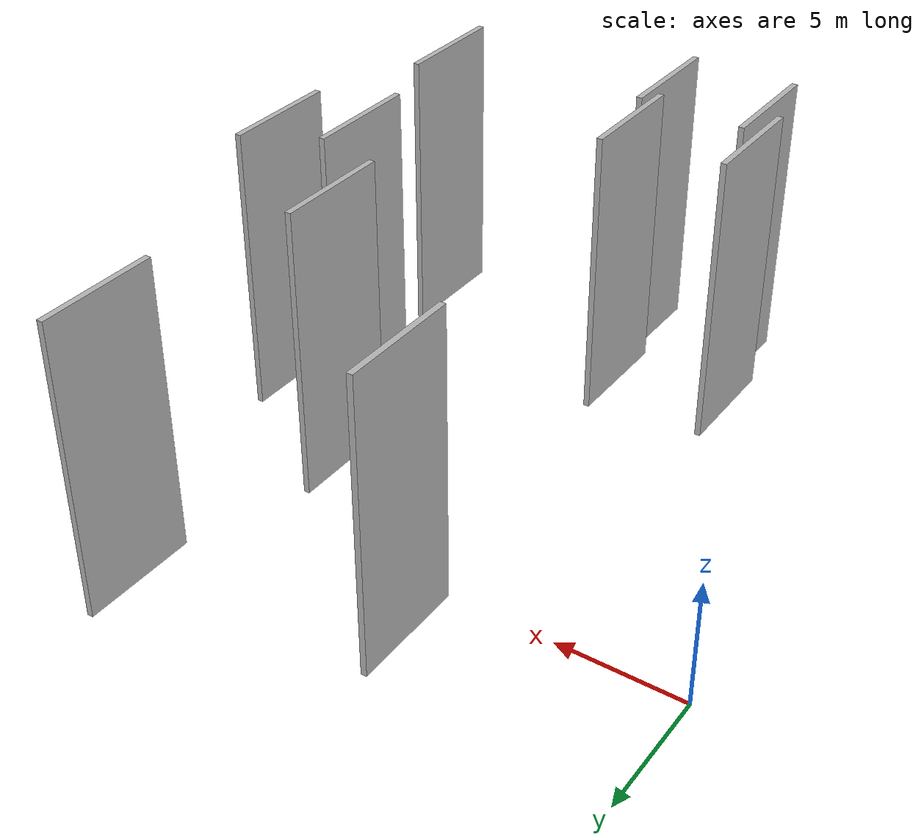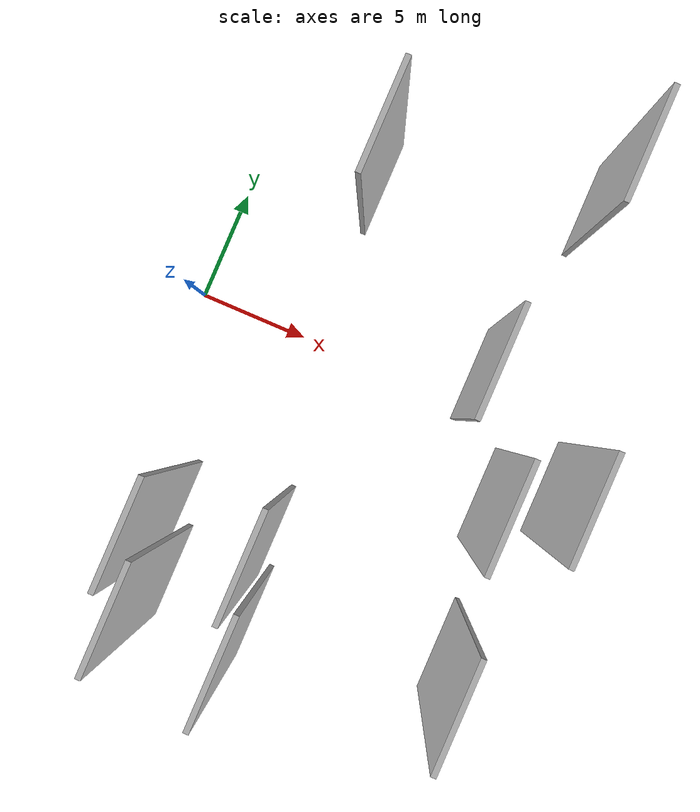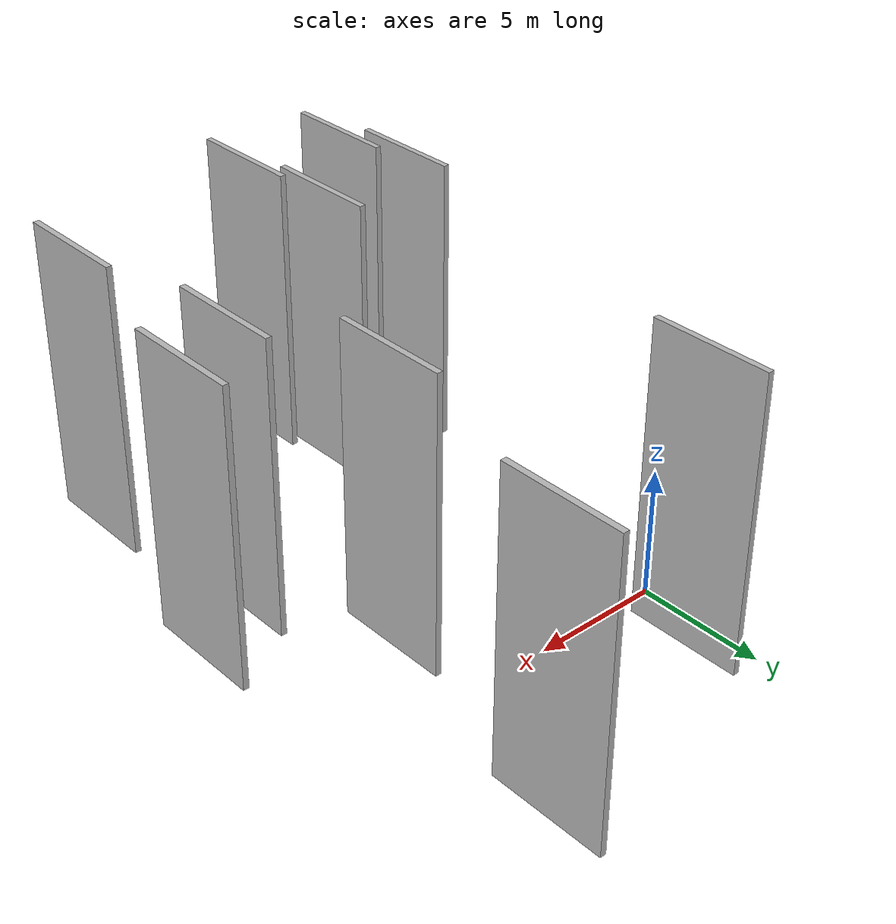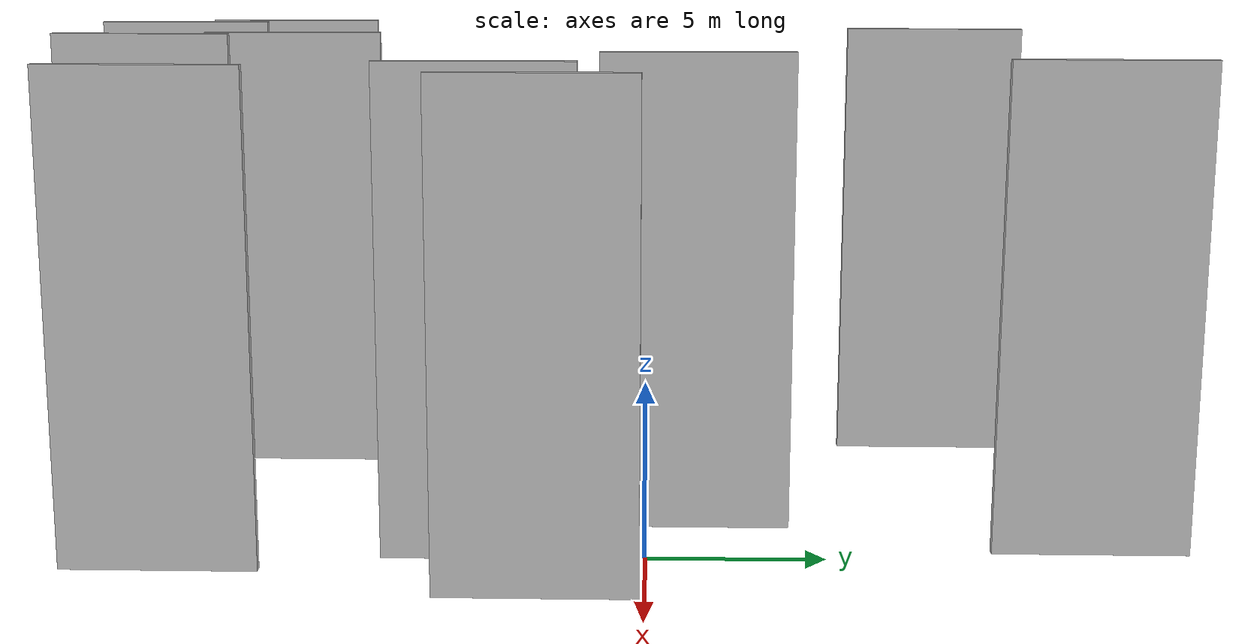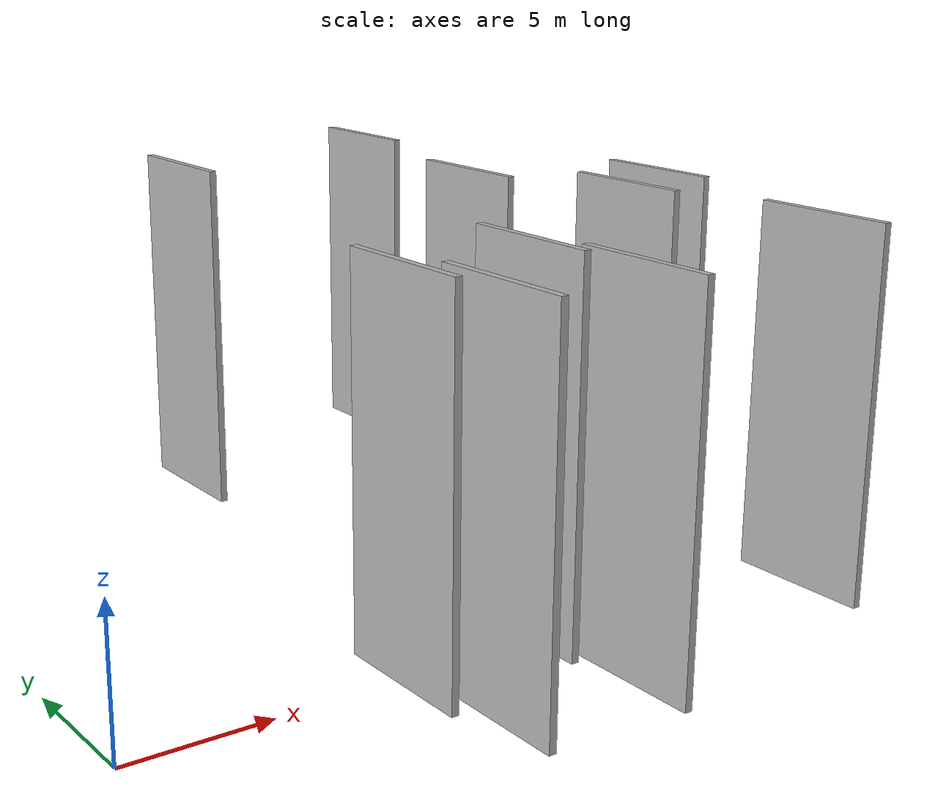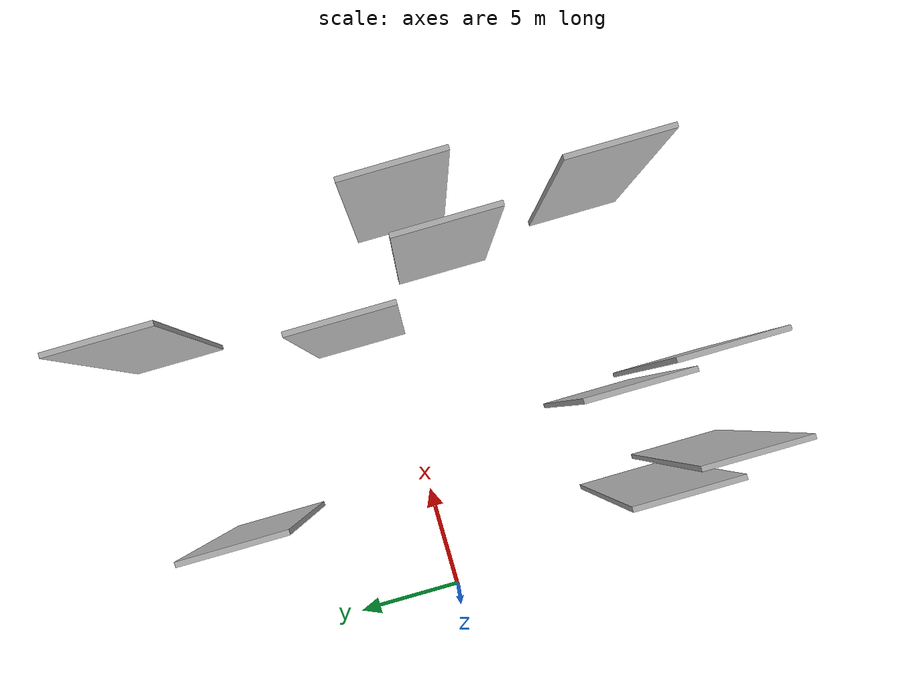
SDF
<sdf version="1.6">
 <world name="default">
  <scene>
   <sky><clouds><speed>12</speed></clouds></sky>
   <ambient>0.4 0.4 0.4 1</ambient>
   <background>0.7 0.7 0.7 1</background>
   <shadows>1</shadows>
  </scene>
  <gravity>0 0 -9.8066</gravity>
  <magnetic_field>6e-06 2.3e-05 -4.2e-05</magnetic_field>
  <physics default="0" name="default_physics" type="ode">
   <ode>
    <solver>
     <type>quick</type>
     <iters>10</iters>
     <sor>1.0</sor>
     <use_dynamic_moi_rescaling>0</use_dynamic_moi_rescaling>
    </solver>
    <constraints>
     <cfm>0</cfm>
     <erp>0.2</erp>
     <contact_max_correcting_vel>100</contact_max_correcting_vel>
     <contact_surface_layer>0.001</contact_surface_layer>
    </constraints>
   </ode>
   <max_step_size>0.004</max_step_size>
   <real_time_factor>1</real_time_factor>
   <real_time_update_rate>250</real_time_update_rate>
  </physics>
  <light name="sun" type="directional">
   <pose>0 0 10 0 0 0</pose>
   <diffuse>0.8 0.8 0.8 1</diffuse>
   <specular>0.2 0.2 0.2 1</specular>
   <attenuation>
    <range>1000</range>
    <constant>0.9</constant>
    <linear>0.01</linear>
    <quadratic>0.001</quadratic>
   </attenuation>
   <direction>-0.5 0.1 -0.9</direction>
  </light>
  <model name="grey_wall_1">
   <static>1</static>
   <pose>3.5983 -8.5910 5.0 0.000000 0.000000 1.570796</pose>
   <link name="link">
    <pose>0 0 5.00 0 0 0</pose>
    <collision name="collision"><geometry><box><size>4.00 0.2 10.00</size></box></geometry></collision>
    <visual name="visual">
     <cast_shadows>0</cast_shadows>
     <geometry><box><size>4.00 0.2 10.00</size></box></geometry>
     <material>
      <script>
       <uri>model://HANNAS_wall/materials/scripts</uri>
       <uri>model://HANNAS_wall/materials/textures</uri>
       <name>vrc/HANNAS_wall</name>
      </script>
     </material>
    </visual>
   </link>
  </model>
  <model name="grey_wall_2">
   <static>1</static>
   <pose>6.0450 6.6591 5.0 0.000000 0.000000 1.570796</pose>
   <link name="link">
    <pose>0 0 5.00 0 0 0</pose>
    <collision name="collision"><geometry><box><size>4.00 0.2 10.00</size></box></geometry></collision>
    <visual name="visual">
     <cast_shadows>0</cast_shadows>
     <geometry><box><size>4.00 0.2 10.00</size></box></geometry>
     <material>
      <script>
       <uri>model://HANNAS_wall/materials/scripts</uri>
       <uri>model://HANNAS_wall/materials/textures</uri>
       <name>vrc/HANNAS_wall</name>
      </script>
     </material>
    </visual>
   </link>
  </model>
  <model name="grey_wall_3">
   <static>1</static>
   <pose>8.0065 -11.3922 5.0 0.000000 0.000000 1.570796</pose>
   <link name="link">
    <pose>0 0 5.00 0 0 0</pose>
    <collision name="collision"><geometry><box><size>4.00 0.2 10.00</size></box></geometry></collision>
    <visual name="visual">
     <cast_shadows>0</cast_shadows>
     <geometry><box><size>4.00 0.2 10.00</size></box></geometry>
     <material>
      <script>
       <uri>model://HANNAS_wall/materials/scripts</uri>
       <uri>model://HANNAS_wall/materials/textures</uri>
       <name>vrc/HANNAS_wall</name>
      </script>
     </material>
    </visual>
   </link>
  </model>
  <model name="grey_wall_4">
   <static>1</static>
   <pose>14.6729 -3.2833 5.0 0.000000 0.000000 1.570796</pose>
   <link name="link">
    <pose>0 0 5.00 0 0 0</pose>
    <collision name="collision"><geometry><box><size>4.00 0.2 10.00</size></box></geometry></collision>
    <visual name="visual">
     <cast_shadows>0</cast_shadows>
     <geometry><box><size>4.00 0.2 10.00</size></box></geometry>
     <material>
      <script>
       <uri>model://HANNAS_wall/materials/scripts</uri>
       <uri>model://HANNAS_wall/materials/textures</uri>
       <name>vrc/HANNAS_wall</name>
      </script>
     </material>
    </visual>
   </link>
  </model>
  <model name="grey_wall_5">
   <static>1</static>
   <pose>14.0399 9.1118 5.0 0.000000 0.000000 1.570796</pose>
   <link name="link">
    <pose>0 0 5.00 0 0 0</pose>
    <collision name="collision"><geometry><box><size>4.00 0.2 10.00</size></box></geometry></collision>
    <visual name="visual">
     <cast_shadows>0</cast_shadows>
     <geometry><box><size>4.00 0.2 10.00</size></box></geometry>
     <material>
      <script>
       <uri>model://HANNAS_wall/materials/scripts</uri>
       <uri>model://HANNAS_wall/materials/textures</uri>
       <name>vrc/HANNAS_wall</name>
      </script>
     </material>
    </visual>
   </link>
  </model>
  <model name="grey_wall_6">
   <static>1</static>
   <pose>12.4711 1.0859 5.0 0.000000 0.000000 1.570796</pose>
   <link name="link">
    <pose>0 0 5.00 0 0 0</pose>
    <collision name="collision"><geometry><box><size>4.00 0.2 10.00</size></box></geometry></collision>
    <visual name="visual">
     <cast_shadows>0</cast_shadows>
     <geometry><box><size>4.00 0.2 10.00</size></box></geometry>
     <material>
      <script>
       <uri>model://HANNAS_wall/materials/scripts</uri>
       <uri>model://HANNAS_wall/materials/textures</uri>
       <name>vrc/HANNAS_wall</name>
      </script>
     </material>
    </visual>
   </link>
  </model>
  <model name="grey_wall_7">
   <static>1</static>
   <pose>15.5844 -9.6122 5.0 0.000000 0.000000 1.570796</pose>
   <link name="link">
    <pose>0 0 5.00 0 0 0</pose>
    <collision name="collision"><geometry><box><size>4.00 0.2 10.00</size></box></geometry></collision>
    <visual name="visual">
     <cast_shadows>0</cast_shadows>
     <geometry><box><size>4.00 0.2 10.00</size></box></geometry>
     <material>
      <script>
       <uri>model://HANNAS_wall/materials/scripts</uri>
       <uri>model://HANNAS_wall/materials/textures</uri>
       <name>vrc/HANNAS_wall</name>
      </script>
     </material>
    </visual>
   </link>
  </model>
  <model name="grey_wall_8">
   <static>1</static>
   <pose>4.2732 -11.1783 5.0 0.000000 0.000000 1.570796</pose>
   <link name="link">
    <pose>0 0 5.00 0 0 0</pose>
    <collision name="collision"><geometry><box><size>4.00 0.2 10.00</size></box></geometry></collision>
    <visual name="visual">
     <cast_shadows>0</cast_shadows>
     <geometry><box><size>4.00 0.2 10.00</size></box></geometry>
     <material>
      <script>
       <uri>model://HANNAS_wall/materials/scripts</uri>
       <uri>model://HANNAS_wall/materials/textures</uri>
       <name>vrc/HANNAS_wall</name>
      </script>
     </material>
    </visual>
   </link>
  </model>
  <model name="grey_wall_9">
   <static>1</static>
   <pose>7.5384 -8.0144 5.0 0.000000 0.000000 1.570796</pose>
   <link name="link">
    <pose>0 0 5.00 0 0 0</pose>
    <collision name="collision"><geometry><box><size>4.00 0.2 10.00</size></box></geometry></collision>
    <visual name="visual">
     <cast_shadows>0</cast_shadows>
     <geometry><box><size>4.00 0.2 10.00</size></box></geometry>
     <material>
      <script>
       <uri>model://HANNAS_wall/materials/scripts</uri>
       <uri>model://HANNAS_wall/materials/textures</uri>
       <name>vrc/HANNAS_wall</name>
      </script>
     </material>
    </visual>
   </link>
  </model>
  <model name="grey_wall_10">
   <static>1</static>
   <pose>16.9731 -2.0284 5.0 0.000000 0.000000 1.570796</pose>
   <link name="link">
    <pose>0 0 5.00 0 0 0</pose>
    <collision name="collision"><geometry><box><size>4.00 0.2 10.00</size></box></geometry></collision>
    <visual name="visual">
     <cast_shadows>0</cast_shadows>
     <geometry><box><size>4.00 0.2 10.00</size></box></geometry>
     <material>
      <script>
       <uri>model://HANNAS_wall/materials/scripts</uri>
       <uri>model://HANNAS_wall/materials/textures</uri>
       <name>vrc/HANNAS_wall</name>
      </script>
     </material>
    </visual>
   </link>
  </model>
 </world>
</sdf>
